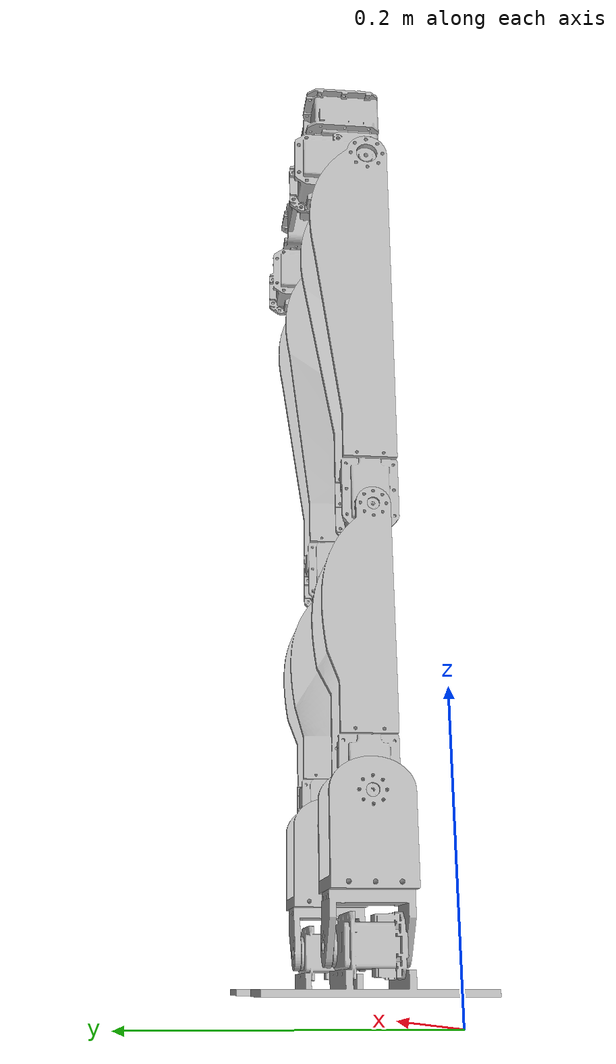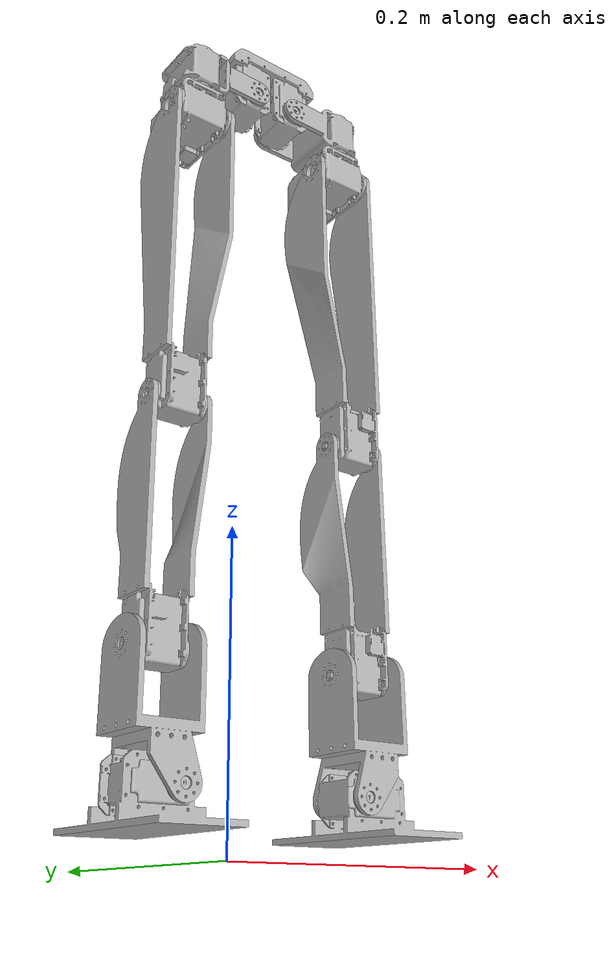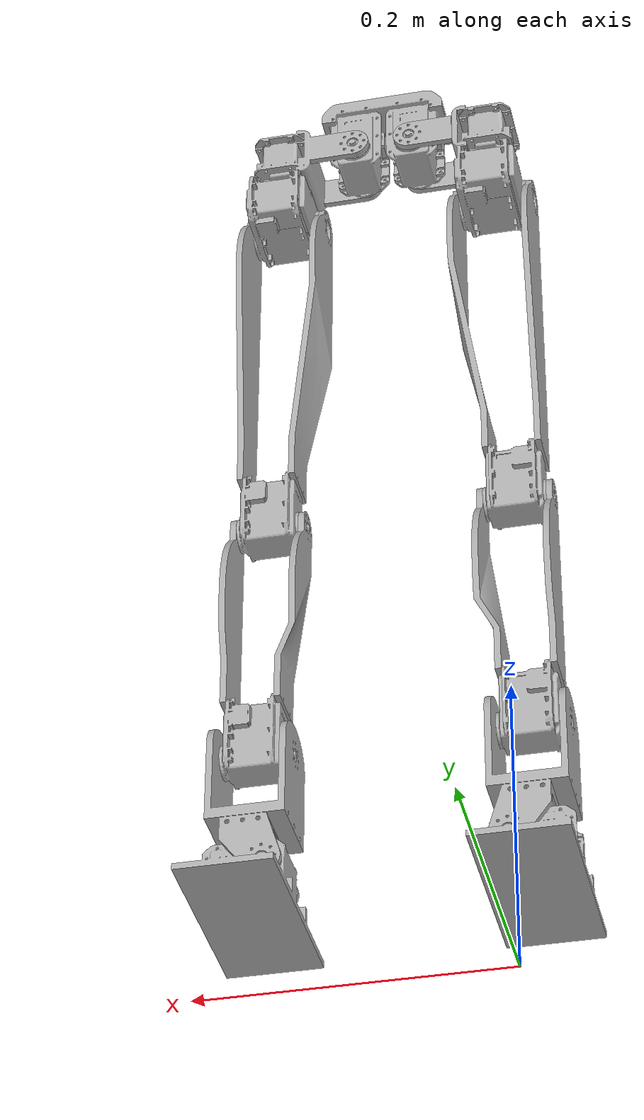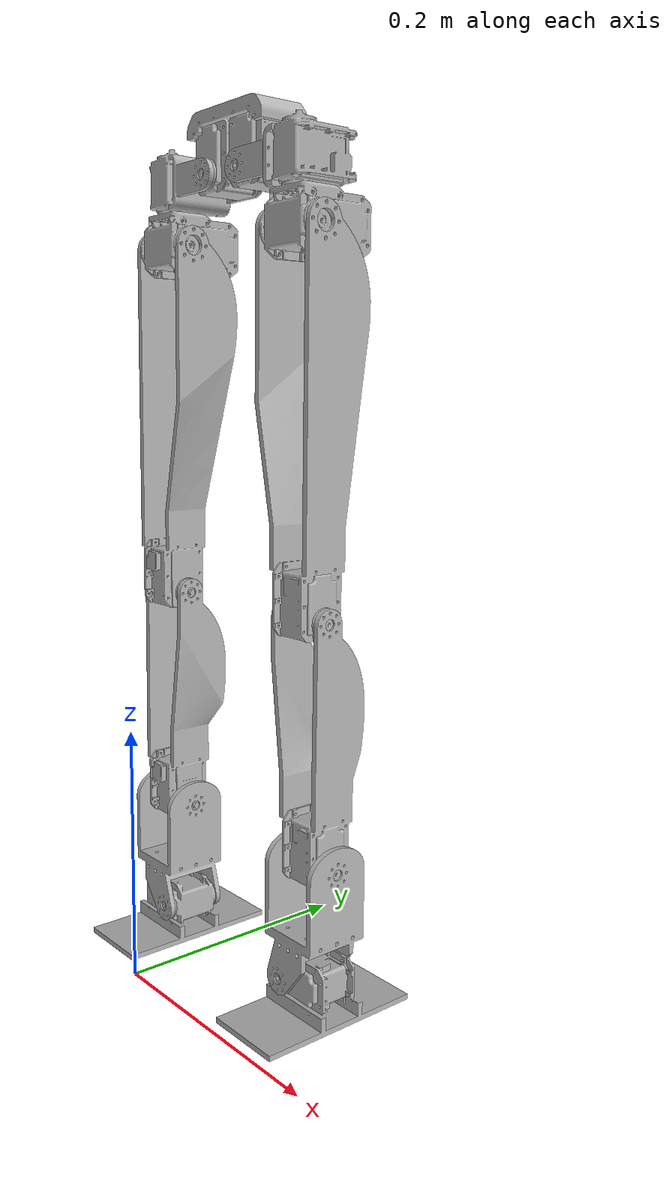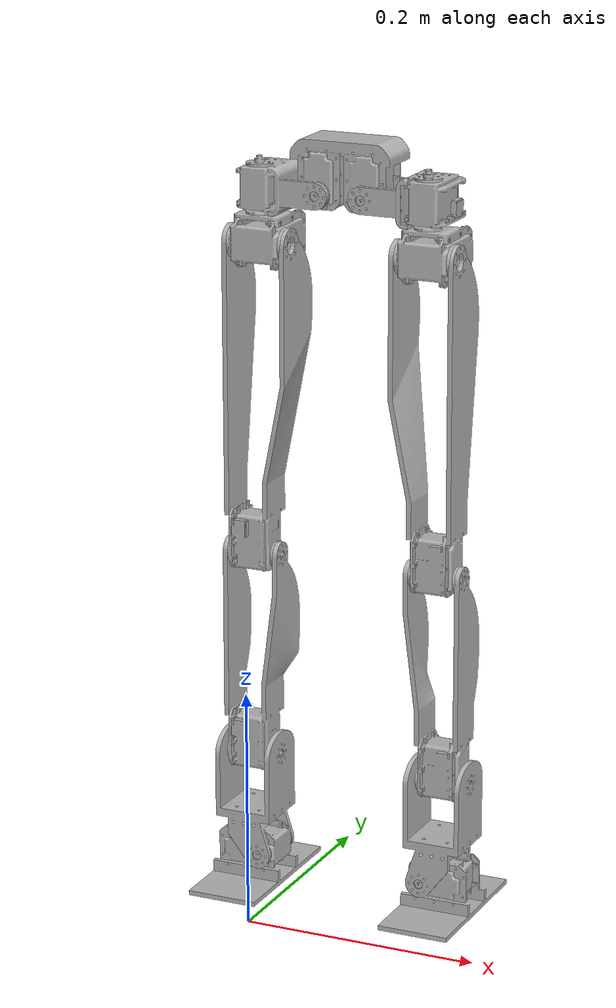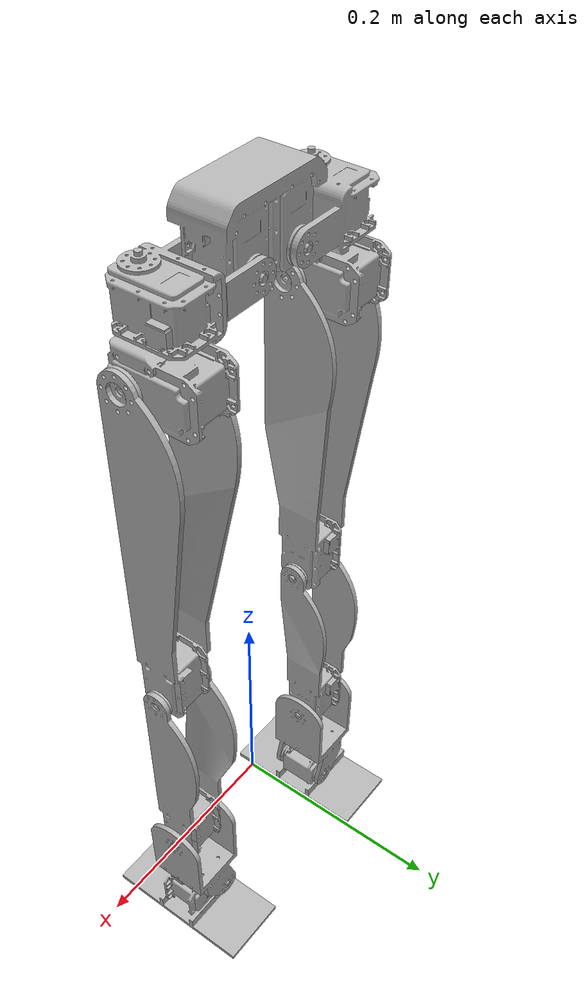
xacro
<?xml version="1.0" ?>
<robot name="abi" xmlns:xacro="http://www.ros.org/wiki/xacro">

<xacro:include filename="$(find abi_description)/urdf/materials.xacro" />
<xacro:include filename="$(find abi_description)/urdf/abi.trans" />
<xacro:include filename="$(find abi_description)/urdf/abi.gazebo" />

<link name="base_link"></link>
    <joint name="base_fixed" type="fixed">
        <origin xyz="0 0 0" rpy="0 0 0"/>
        <parent link="base_link"/>
        <child link="base_footprint"/>
    </joint>

<!-- base_link -->
<link name="base_footprint">
  <inertial>
    <origin rpy="0 0 0" xyz="0.11526276092885947 0.0685580229960114 0.6049745000867683"/>
    <mass value="0.14056247189322119"/>
    <inertia ixx="5.4e-05" ixy="-0.0" ixz="-0.0" iyy="0.000105" iyz="0.0" izz="8.7e-05"/>
  </inertial>
  <visual>
    <origin rpy="0 0 0" xyz="0 0 0"/>
    <geometry>
      <mesh filename="package://abi_description/meshes/base_link.stl" scale="0.001 0.001 0.001"/>
    </geometry>
    <material name="silver"/>
  </visual>
  <collision>
    <origin rpy="0 0 0" xyz="0 0 0"/>
    <geometry>
      <mesh filename="package://abi_description/meshes/base_link.stl" scale="0.001 0.001 0.001"/>
    </geometry>
  </collision>
</link>

<!-- imu joint -->
    <joint name="imu_fixed" type="fixed">
        <origin xyz="0.0 0 0.63" rpy="0 0 0"/>
        <parent link="base_footprint"/>
        <child link="imu_link"/>
    </joint>
    <link name="imu_link"></link>

<link name="r_hip_roll_link_1">
  <inertial>
    <origin rpy="0 0 0" xyz="-0.0455984855206972 0.019492903051518427 0.0001803076313984242"/>
    <mass value="0.07674208804659018"/>
    <inertia ixx="2.5e-05" ixy="-1e-06" ixz="0.0" iyy="2.7e-05" iyz="0.0" izz="3.4e-05"/>
  </inertial>
  <visual>
    <origin rpy="0 0 0" xyz="-0.095665 -0.048506 -0.588984"/>
    <geometry>
      <mesh filename="package://abi_description/meshes/r_hip_roll_link_1.stl" scale="0.001 0.001 0.001"/>
    </geometry>
    <material name="silver"/>
  </visual>
  <collision>
    <origin rpy="0 0 0" xyz="-0.095665 -0.048506 -0.588984"/>
    <geometry>
      <mesh filename="package://abi_description/meshes/r_hip_roll_link_1.stl" scale="0.001 0.001 0.001"/>
    </geometry>
  </collision>
</link>

<link name="l_hip_roll_link__1__1">
  <inertial>
    <origin rpy="0 0 0" xyz="0.04556544500909446 0.019492904189384326 0.0001803453115176712"/>
    <mass value="0.11897998147005992"/>
    <inertia ixx="3.9e-05" ixy="1e-06" ixz="-0.0" iyy="4.2e-05" iyz="0.0" izz="5.3e-05"/>
  </inertial>
  <visual>
    <origin rpy="0 0 0" xyz="-0.134824 -0.048506 -0.588984"/>
    <geometry>
      <mesh filename="package://abi_description/meshes/l_hip_roll_link__1__1.stl" scale="0.001 0.001 0.001"/>
    </geometry>
    <material name="silver"/>
  </visual>
  <collision>
    <origin rpy="0 0 0" xyz="-0.134824 -0.048506 -0.588984"/>
    <geometry>
      <mesh filename="package://abi_description/meshes/l_hip_roll_link__1__1.stl" scale="0.001 0.001 0.001"/>
    </geometry>
  </collision>
</link>

<link name="r_hip_yaw_link_1">
  <inertial>
    <origin rpy="0 0 0" xyz="0.00010070088882587619 0.014546186099299342 -0.02316980321419737"/>
    <mass value="0.15342441399034815"/>
    <inertia ixx="5.4e-05" ixy="-1e-06" ixz="0.0" iyy="3.9e-05" iyz="1e-06" izz="6.4e-05"/>
  </inertial>
  <visual>
    <origin rpy="0 0 0" xyz="-0.043165 -0.056556 -0.569234"/>
    <geometry>
      <mesh filename="package://abi_description/meshes/r_hip_yaw_link_1.stl" scale="0.001 0.001 0.001"/>
    </geometry>
    <material name="silver"/>
  </visual>
  <collision>
    <origin rpy="0 0 0" xyz="-0.043165 -0.056556 -0.569234"/>
    <geometry>
      <mesh filename="package://abi_description/meshes/r_hip_yaw_link_1.stl" scale="0.001 0.001 0.001"/>
    </geometry>
  </collision>
</link>

<link name="l_hip_yaw_link_1">
  <inertial>
    <origin rpy="0 0 0" xyz="0.00010068460047474304 0.014546186099300383 -0.023169803214203477"/>
    <mass value="0.15342441399034815"/>
    <inertia ixx="5.4e-05" ixy="-1e-06" ixz="0.0" iyy="3.9e-05" iyz="1e-06" izz="6.4e-05"/>
  </inertial>
  <visual>
    <origin rpy="0 0 0" xyz="-0.187324 -0.056556 -0.569234"/>
    <geometry>
      <mesh filename="package://abi_description/meshes/l_hip_yaw_link_1.stl" scale="0.001 0.001 0.001"/>
    </geometry>
    <material name="silver"/>
  </visual>
  <collision>
    <origin rpy="0 0 0" xyz="-0.187324 -0.056556 -0.569234"/>
    <geometry>
      <mesh filename="package://abi_description/meshes/l_hip_yaw_link_1.stl" scale="0.001 0.001 0.001"/>
    </geometry>
  </collision>
</link>

<link name="l_hip_pitch_link__1__1">
  <inertial>
    <origin rpy="0 0 0" xyz="0.027708594764509903 0.006582375867326427 -0.15609272532253105"/>
    <mass value="0.24713382283834445"/>
    <inertia ixx="0.001846" ixy="3e-06" ixz="7.5e-05" iyy="0.001908" iyz="-6.3e-05" izz="0.000133"/>
  </inertial>
  <visual>
    <origin rpy="0 0 0" xyz="-0.163824 -0.056556 -0.545234"/>
    <geometry>
      <mesh filename="package://abi_description/meshes/l_hip_pitch_link__1__1.stl" scale="0.001 0.001 0.001"/>
    </geometry>
    <material name="silver"/>
  </visual>
  <collision>
    <origin rpy="0 0 0" xyz="-0.163824 -0.056556 -0.545234"/>
    <geometry>
      <mesh filename="package://abi_description/meshes/l_hip_pitch_link__1__1.stl" scale="0.001 0.001 0.001"/>
    </geometry>
  </collision>
</link>

<link name="r_hip_pitch_link__1__1">
  <inertial>
    <origin rpy="0 0 0" xyz="0.018635580884218798 0.006566387842180062 -0.15609272532252366"/>
    <mass value="0.24713382283834584"/>
    <inertia ixx="0.001846" ixy="-3e-06" ixz="-7.5e-05" iyy="0.001908" iyz="-6.3e-05" izz="0.000133"/>
  </inertial>
  <visual>
    <origin rpy="0 0 0" xyz="-0.019665 -0.056556 -0.545234"/>
    <geometry>
      <mesh filename="package://abi_description/meshes/r_hip_pitch_link__1__1.stl" scale="0.001 0.001 0.001"/>
    </geometry>
    <material name="silver"/>
  </visual>
  <collision>
    <origin rpy="0 0 0" xyz="-0.019665 -0.056556 -0.545234"/>
    <geometry>
      <mesh filename="package://abi_description/meshes/r_hip_pitch_link__1__1.stl" scale="0.001 0.001 0.001"/>
    </geometry>
  </collision>
</link>

<link name="r_knee_pitch_link__1__1">
  <inertial>
    <origin rpy="0 0 0" xyz="0.016591422554264136 0.006747467516479193 -0.11920942018274272"/>
    <mass value="0.17499149080025025"/>
    <inertia ixx="0.000544" ixy="-1e-06" ixz="-2e-05" iyy="0.000575" iyz="-6e-06" izz="6.4e-05"/>
  </inertial>
  <visual>
    <origin rpy="0 0 0" xyz="-0.014615 -0.0599 -0.2868"/>
    <geometry>
      <mesh filename="package://abi_description/meshes/r_knee_pitch_link__1__1.stl" scale="0.001 0.001 0.001"/>
    </geometry>
    <material name="silver"/>
  </visual>
  <collision>
    <origin rpy="0 0 0" xyz="-0.014615 -0.0599 -0.2868"/>
    <geometry>
      <mesh filename="package://abi_description/meshes/r_knee_pitch_link__1__1.stl" scale="0.001 0.001 0.001"/>
    </geometry>
  </collision>
</link>

<link name="l_knee_pitch_link__1__1">
  <inertial>
    <origin rpy="0 0 0" xyz="-0.016591246905534235 0.0067700467959229335 -0.11920942018275008"/>
    <mass value="0.17499149080025042"/>
    <inertia ixx="0.000544" ixy="1e-06" ixz="2e-05" iyy="0.000575" iyz="-6e-06" izz="6.4e-05"/>
  </inertial>
  <visual>
    <origin rpy="0 0 0" xyz="-0.215218 -0.0599 -0.2868"/>
    <geometry>
      <mesh filename="package://abi_description/meshes/l_knee_pitch_link__1__1.stl" scale="0.001 0.001 0.001"/>
    </geometry>
    <material name="silver"/>
  </visual>
  <collision>
    <origin rpy="0 0 0" xyz="-0.215218 -0.0599 -0.2868"/>
    <geometry>
      <mesh filename="package://abi_description/meshes/l_knee_pitch_link__1__1.stl" scale="0.001 0.001 0.001"/>
    </geometry>
  </collision>
</link>

<link name="r_ankle_pitch_link__1__1">
  <inertial>
    <origin rpy="0 0 0" xyz="0.02148738924453114 2.238487173400472e-14 -0.039819701337625094"/>
    <mass value="0.43867923251173946"/>
    <inertia ixx="0.000382" ixy="0.0" ixz="1.6e-05" iyy="0.00041" iyz="-0.0" izz="0.000239"/>
  </inertial>
  <visual>
    <origin rpy="0 0 0" xyz="-0.009565 -0.0657 -0.111"/>
    <geometry>
      <mesh filename="package://abi_description/meshes/r_ankle_pitch_link__1__1.stl" scale="0.001 0.001 0.001"/>
    </geometry>
    <material name="silver"/>
  </visual>
  <collision>
    <origin rpy="0 0 0" xyz="-0.009565 -0.0657 -0.111"/>
    <geometry>
      <mesh filename="package://abi_description/meshes/r_ankle_pitch_link__1__1.stl" scale="0.001 0.001 0.001"/>
    </geometry>
  </collision>
</link>

<link name="l_ankle_pitch_link__1__1">
  <inertial>
    <origin rpy="0 0 0" xyz="-0.021029577352662004 1.1560891133299833e-11 -0.03981971305451969"/>
    <mass value="0.4386795234282766"/>
    <inertia ixx="0.000382" ixy="0.0" ixz="-1e-05" iyy="0.000409" iyz="-0.0" izz="0.000238"/>
  </inertial>
  <visual>
    <origin rpy="0 0 0" xyz="-0.220268 -0.0657 -0.111"/>
    <geometry>
      <mesh filename="package://abi_description/meshes/l_ankle_pitch_link__1__1.stl" scale="0.001 0.001 0.001"/>
    </geometry>
    <material name="silver"/>
  </visual>
  <collision>
    <origin rpy="0 0 0" xyz="-0.220268 -0.0657 -0.111"/>
    <geometry>
      <mesh filename="package://abi_description/meshes/l_ankle_pitch_link__1__1.stl" scale="0.001 0.001 0.001"/>
    </geometry>
  </collision>
</link>

<link name="l_ankle_roll_link__1__1">
  <inertial>
    <origin rpy="0 0 0" xyz="0.011716076785898283 0.01990502610878888 -0.01073478983305472"/>
    <mass value="0.10409112257089649"/>
    <inertia ixx="8.4e-05" ixy="0.0" ixz="1e-06" iyy="4.3e-05" iyz="-0.0" izz="8.9e-05"/>
  </inertial>
  <visual>
    <origin rpy="0 0 0" xyz="-0.188973 -0.0452 -0.027"/>
    <geometry>
      <mesh filename="package://abi_description/meshes/l_ankle_roll_link__1__1.stl" scale="0.001 0.001 0.001"/>
    </geometry>
    <material name="silver"/>
  </visual>
  <collision>
    <origin rpy="0 0 0" xyz="-0.188973 -0.0452 -0.027"/>
    <geometry>
      <mesh filename="package://abi_description/meshes/l_ankle_roll_link__1__1.stl" scale="0.001 0.001 0.001"/>
    </geometry>
  </collision>
</link>

<link name="r_ankle_roll_link__1__1">
  <inertial>
    <origin rpy="0 0 0" xyz="-0.01171601249972238 0.019905026108781483 -0.010710304141445231"/>
    <mass value="0.10409112257090966"/>
    <inertia ixx="8.4e-05" ixy="-0.0" ixz="-1e-06" iyy="4.3e-05" iyz="-0.0" izz="8.9e-05"/>
  </inertial>
  <visual>
    <origin rpy="0 0 0" xyz="-0.0425 -0.0452 -0.027"/>
    <geometry>
      <mesh filename="package://abi_description/meshes/r_ankle_roll_link__1__1.stl" scale="0.001 0.001 0.001"/>
    </geometry>
    <material name="silver"/>
  </visual>
  <collision>
    <origin rpy="0 0 0" xyz="-0.0425 -0.0452 -0.027"/>
    <geometry>
      <mesh filename="package://abi_description/meshes/r_ankle_roll_link__1__1.stl" scale="0.001 0.001 0.001"/>
    </geometry>
  </collision>
</link>

<joint name="r_hip_roll_joint" type="revolute">
  <origin rpy="0 0 0" xyz="0.095665 0.048506 0.588984"/>
  <parent link="base_footprint"/>
  <child link="r_hip_roll_link_1"/>
  <axis xyz="0.0 -1.0 0.0"/>
  <limit effort="100" lower="-0.349066" upper="0.174533" velocity="100"/>
</joint>

<joint name="l_hip_roll_joint" type="revolute">
  <origin rpy="0 0 0" xyz="0.134824 0.048506 0.588984"/>
  <parent link="base_footprint"/>
  <child link="l_hip_roll_link__1__1"/>
  <axis xyz="0.0 -1.0 0.0"/>
  <limit effort="100" lower="-0.174533" upper="0.349066" velocity="100"/>
</joint>

<joint name="r_hip_yaw_joint" type="revolute">
  <origin rpy="0 0 0" xyz="-0.0525 0.00805 -0.01975"/>
  <parent link="r_hip_roll_link_1"/>
  <child link="r_hip_yaw_link_1"/>
  <axis xyz="-0.0 -0.0 -1.0"/>
  <limit effort="100" lower="-1.570796" upper="1.570796" velocity="100"/>
</joint>

<joint name="l_hip_yaw_joint" type="revolute">
  <origin rpy="0 0 0" xyz="0.0525 0.00805 -0.01975"/>
  <parent link="l_hip_roll_link__1__1"/>
  <child link="l_hip_yaw_link_1"/>
  <axis xyz="-0.0 -0.0 -1.0"/>
  <limit effort="100" lower="-1.570796" upper="1.570796" velocity="100"/>
</joint>

<joint name="l_hip_pitch_joint" type="continuous">
  <origin rpy="0 0 0" xyz="-0.0235 0.0 -0.024"/>
  <parent link="l_hip_yaw_link_1"/>
  <child link="l_hip_pitch_link__1__1"/>
  <axis xyz="-1.0 -0.0 -0.0"/>
</joint>

<joint name="r_hip_pitch_joint" type="continuous">
  <origin rpy="0 0 0" xyz="-0.0235 0.0 -0.024"/>
  <parent link="r_hip_yaw_link_1"/>
  <child link="r_hip_pitch_link__1__1"/>
  <axis xyz="-1.0 -0.0 -0.0"/>
</joint>

<joint name="r_knee_pitch_joint" type="revolute">
  <origin rpy="0 0 0" xyz="-0.00505 0.003344 -0.258434"/>
  <parent link="r_hip_pitch_link__1__1"/>
  <child link="r_knee_pitch_link__1__1"/>
  <axis xyz="-1.0 -0.0 -0.0"/>
  <limit effort="100" lower="-1.919862" upper="0.174533" velocity="100"/>
</joint>

<joint name="l_knee_pitch_joint" type="revolute">
  <origin rpy="0 0 0" xyz="0.051394 0.003344 -0.258434"/>
  <parent link="l_hip_pitch_link__1__1"/>
  <child link="l_knee_pitch_link__1__1"/>
  <axis xyz="1.0 0.0 0.0"/>
  <limit effort="100" lower="-0.174533" upper="1.919862" velocity="100"/>
</joint>

<joint name="r_ankle_pitch_joint" type="revolute">
  <origin rpy="0 0 0" xyz="-0.00505 0.0058 -0.1758"/>
  <parent link="r_knee_pitch_link__1__1"/>
  <child link="r_ankle_pitch_link__1__1"/>
  <axis xyz="-1.0 -0.0 -0.0"/>
  <limit effort="100" lower="-0.785398" upper="0.785398" velocity="100"/>
</joint>

<joint name="l_ankle_pitch_joint" type="revolute">
  <origin rpy="0 0 0" xyz="0.00505 0.0058 -0.1758"/>
  <parent link="l_knee_pitch_link__1__1"/>
  <child link="l_ankle_pitch_link__1__1"/>
  <axis xyz="1.0 -0.0 0.0"/>
  <limit effort="100" lower="-0.785398" upper="0.785398" velocity="100"/>
</joint>

<joint name="l_ankle_roll_joint" type="revolute">
  <origin rpy="0 0 0" xyz="-0.031295 -0.0205 -0.084"/>
  <parent link="l_ankle_pitch_link__1__1"/>
  <child link="l_ankle_roll_link__1__1"/>
  <axis xyz="-0.0 1.0 -0.0"/>
  <limit effort="100" lower="-0.174533" upper="0.785398" velocity="100"/>
</joint>

<joint name="r_ankle_roll_joint" type="revolute">
  <origin rpy="0 0 0" xyz="0.032935 -0.0205 -0.084"/>
  <parent link="r_ankle_pitch_link__1__1"/>
  <child link="r_ankle_roll_link__1__1"/>
  <axis xyz="-0.0 1.0 -0.0"/>
  <limit effort="100" lower="-0.785398" upper="0.174533" velocity="100"/>
</joint>

</robot>

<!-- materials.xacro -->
<robot name="abi" xmlns:xacro="http://www.ros.org/wiki/xacro" >

<material name="silver">
  <color rgba="0.700 0.700 0.700 1.000"/>
</material>

</robot>

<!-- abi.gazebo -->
<robot name="abi" xmlns:xacro="http://www.ros.org/wiki/xacro" >

<xacro:property name="body_color" value="Gazebo/Silver" />

<gazebo>
  <plugin filename="libgazebo_ros_control.so" name="control"/>
</gazebo>

<gazebo>
  <plugin filename="libgazebo_ros_p3d.so" name="ground_truth">
    <frameName>map</frameName>
    <bodyName>base_link</bodyName>
    <topicName>/abi/odom</topicName>
    <updateRate>100.0</updateRate>
  </plugin>
</gazebo>

<!-- imu sensor -->
<gazebo reference="imu_link">
  <gravity>true</gravity>
  <sensor name="imu_sensor" type="imu">
    <always_on>true</always_on>
    <update_rate>100</update_rate>
    <visualize>true</visualize>
    <topic>/abi/sensor/imu</topic>
    <plugin filename="libgazebo_ros_imu_sensor.so" name="imu_plugin">
      <topicName>abi/sensor/imu</topicName>
      <bodyName>imu_link</bodyName>
      <updateRateHZ>10.0</updateRateHZ>
      <gaussianNoise>0.0</gaussianNoise>
      <xyzOffset>0 0 0</xyzOffset>
      <rpyOffset>0 0 0</rpyOffset>
      <frameName>imu_link</frameName>
    </plugin>
    <pose>0 0 0 0 0 0</pose>
  </sensor>
</gazebo>

<!-- World -->
<gazebo reference="world"/>
<!-- Map -->
<gazebo reference="map"/>
<!-- Base -->
<gazebo reference="base_link"/>
<!-- IMU -->
<gazebo reference="imu_link"/>

<gazebo reference="base_link">
  <material>${body_color}</material>
  <mu1>0.2</mu1>
  <mu2>0.2</mu2>
  <selfCollide>true</selfCollide>
  <gravity>true</gravity>
</gazebo>

<gazebo reference="r_hip_roll_link_1">
  <material>${body_color}</material>
  <mu1>0.2</mu1>
  <mu2>0.2</mu2>
  <selfCollide>true</selfCollide>
</gazebo>

<gazebo reference="l_hip_roll_link__1__1">
  <material>${body_color}</material>
  <mu1>0.2</mu1>
  <mu2>0.2</mu2>
  <selfCollide>true</selfCollide>
</gazebo>

<gazebo reference="r_hip_yaw_link_1">
  <material>${body_color}</material>
  <mu1>0.2</mu1>
  <mu2>0.2</mu2>
  <selfCollide>true</selfCollide>
</gazebo>

<gazebo reference="l_hip_yaw_link_1">
  <material>${body_color}</material>
  <mu1>0.2</mu1>
  <mu2>0.2</mu2>
  <selfCollide>true</selfCollide>
</gazebo>

<gazebo reference="l_hip_pitch_link__1__1">
  <material>${body_color}</material>
  <mu1>0.2</mu1>
  <mu2>0.2</mu2>
  <selfCollide>true</selfCollide>
</gazebo>

<gazebo reference="r_hip_pitch_link__1__1">
  <material>${body_color}</material>
  <mu1>0.2</mu1>
  <mu2>0.2</mu2>
  <selfCollide>true</selfCollide>
</gazebo>

<gazebo reference="r_knee_pitch_link__1__1">
  <material>${body_color}</material>
  <mu1>0.2</mu1>
  <mu2>0.2</mu2>
  <selfCollide>true</selfCollide>
</gazebo>

<gazebo reference="l_knee_pitch_link__1__1">
  <material>${body_color}</material>
  <mu1>0.2</mu1>
  <mu2>0.2</mu2>
  <selfCollide>true</selfCollide>
</gazebo>

<gazebo reference="r_ankle_pitch_link__1__1">
  <material>${body_color}</material>
  <mu1>0.2</mu1>
  <mu2>0.2</mu2>
  <selfCollide>true</selfCollide>
</gazebo>

<gazebo reference="l_ankle_pitch_link__1__1">
  <material>${body_color}</material>
  <mu1>0.2</mu1>
  <mu2>0.2</mu2>
  <selfCollide>true</selfCollide>
</gazebo>

<gazebo reference="l_ankle_roll_link__1__1">
  <kp>100000.0</kp>
  <kd>100.0</kd>
  <mu1>1000</mu1>
  <mu2>1000</mu2>
  <fdir1>1 1 0</fdir1>
  <maxVel>1.0</maxVel>
  <minDepth>0.0001</minDepth>
  <material>Gazebo/Blue</material>
</gazebo>

<gazebo reference="r_ankle_roll_link__1__1">
   <kp>100000.0</kp>
  <kd>100.0</kd>
  <mu1>1000</mu1>
  <mu2>1000</mu2>
  <fdir1>1 1 0</fdir1>
  <maxVel>1.0</maxVel>
  <minDepth>0.0001</minDepth>
  <material>Gazebo/Blue</material>
</gazebo>

</robot>
